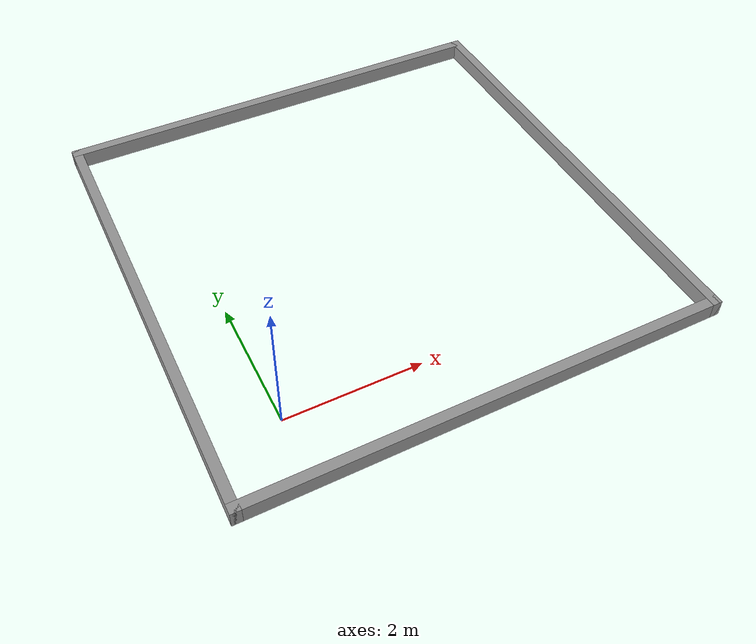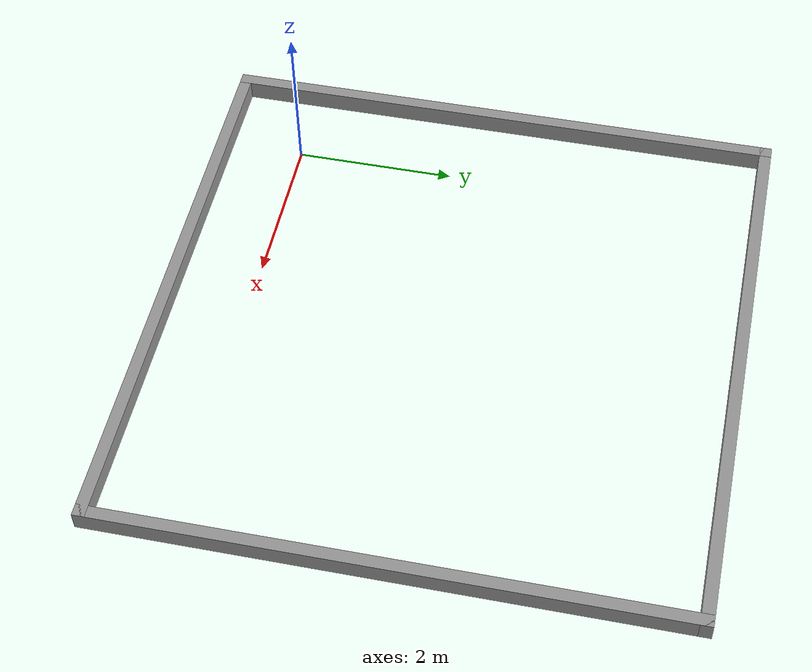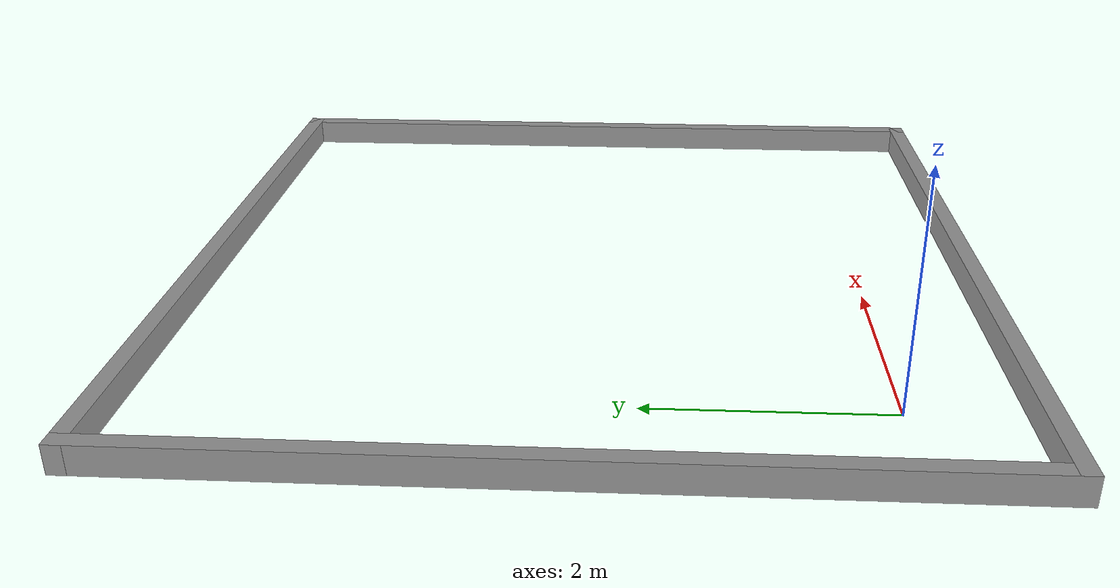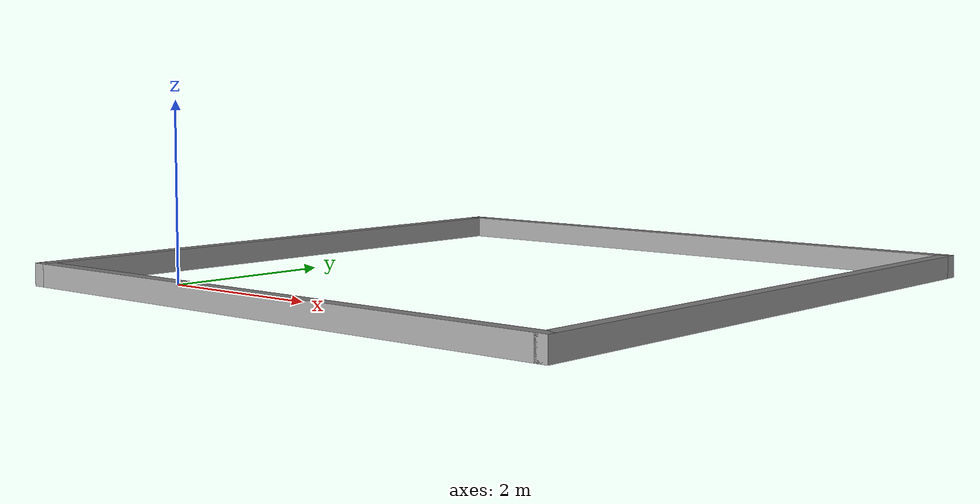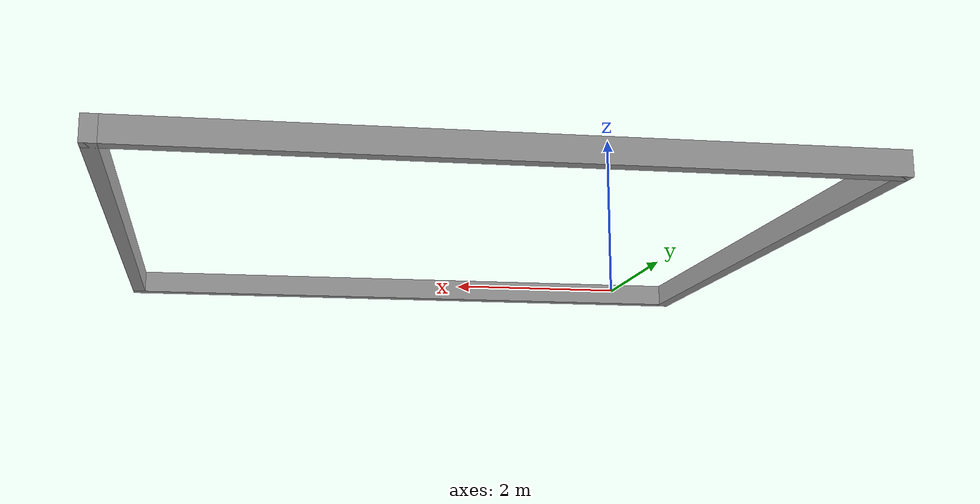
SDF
<sdf version='1.6'>
  <model name='wall.world'>
    <pose frame=''>2.5 2.5 0 0 -0 0</pose>
    <link name='Wall_1'>
      <collision name='Wall_1_Collision'>
        <geometry>
          <box>
            <size>7.15 0.15 0.25</size>
          </box>
        </geometry>
        <pose frame=''>0 0 0.125 0 -0 0</pose>
      </collision>
      <visual name='Wall_1_Visual'>
        <pose frame=''>0 0 0.125 0 -0 0</pose>
        <geometry>
          <box>
            <size>7.15 0.15 0.25</size>
          </box>
        </geometry>
        <material>
          <script>
            <uri>file://media/materials/scripts/gazebo.material</uri>
            <name>Gazebo/Grey</name>
          </script>
          <ambient>1 1 1 1</ambient>
        </material>
        <meta>
          <layer>0</layer>
        </meta>
      </visual>
      <pose frame=''>0 -3.5 0 0 -0 0</pose>
    </link>
    <link name='Wall_2'>
      <collision name='Wall_2_Collision'>
        <geometry>
          <box>
            <size>7.15 0.15 0.25</size>
          </box>
        </geometry>
        <pose frame=''>0 0 0.125 0 -0 0</pose>
      </collision>
      <visual name='Wall_2_Visual'>
        <pose frame=''>0 0 0.125 0 -0 0</pose>
        <geometry>
          <box>
            <size>7.15 0.15 0.25</size>
          </box>
        </geometry>
        <material>
          <script>
            <uri>file://media/materials/scripts/gazebo.material</uri>
            <name>Gazebo/Grey</name>
          </script>
          <ambient>1 1 1 1</ambient>
        </material>
        <meta>
          <layer>0</layer>
        </meta>
      </visual>
      <pose frame=''>3.5 -0 0 0 -0 1.5708</pose>
    </link>
    <link name='Wall_3'>
      <collision name='Wall_3_Collision'>
        <geometry>
          <box>
            <size>7.15 0.15 0.25</size>
          </box>
        </geometry>
        <pose frame=''>0 0 0.125 0 -0 0</pose>
      </collision>
      <visual name='Wall_3_Visual'>
        <pose frame=''>0 0 0.125 0 -0 0</pose>
        <geometry>
          <box>
            <size>7.15 0.15 0.25</size>
          </box>
        </geometry>
        <material>
          <script>
            <uri>file://media/materials/scripts/gazebo.material</uri>
            <name>Gazebo/Grey</name>
          </script>
          <ambient>1 1 1 1</ambient>
        </material>
        <meta>
          <layer>0</layer>
        </meta>
      </visual>
      <pose frame=''>0 3.5 0 0 -0 3.14159</pose>
    </link>
    <link name='Wall_4'>
      <collision name='Wall_4_Collision'>
        <geometry>
          <box>
            <size>7.15 0.15 0.25</size>
          </box>
        </geometry>
        <pose frame=''>0 0 0.125 0 -0 0</pose>
      </collision>
      <visual name='Wall_4_Visual'>
        <pose frame=''>0 0 0.125 0 -0 0</pose>
        <geometry>
          <box>
            <size>7.15 0.15 0.25</size>
          </box>
        </geometry>
        <material>
          <script>
            <uri>file://media/materials/scripts/gazebo.material</uri>
            <name>Gazebo/Grey</name>
          </script>
          <ambient>1 1 1 1</ambient>
        </material>
        <meta>
          <layer>0</layer>
        </meta>
      </visual>
      <pose frame=''>-3.5 -0 0 0 -0 -1.5708</pose>
    </link>
    <static>1</static>
  </model>
</sdf>
